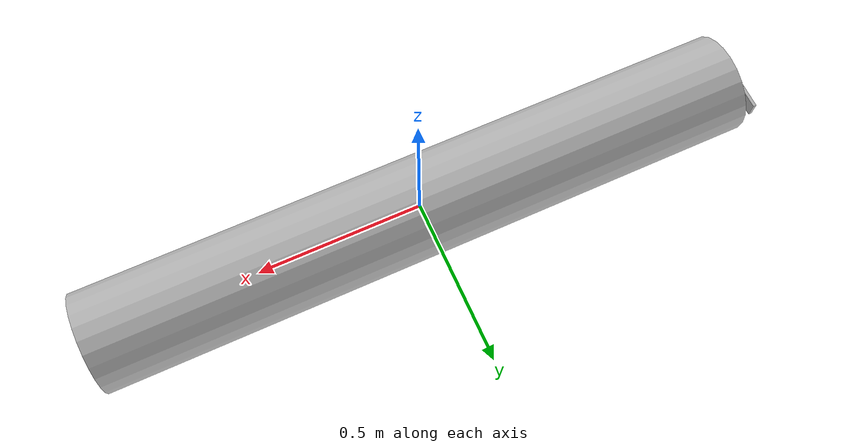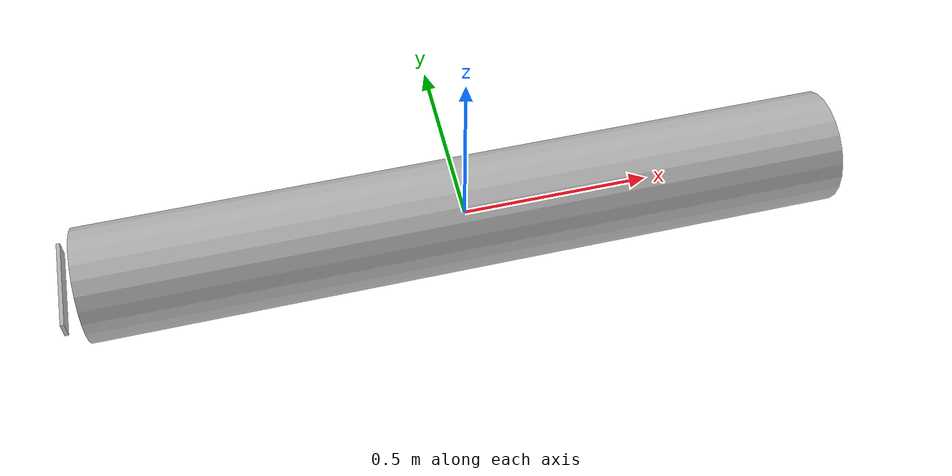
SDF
<?xml version="1.0" ?>
<sdf version="1.6">
  <world name="battery_thruster_consumer">
    <plugin
      filename="gz-sim-apply-link-wrench-system"
      name="gz::sim::systems::ApplyLinkWrench">
    </plugin>

    <physics name="fast" type="none">
      <!-- Zero to run as fast as possible -->
      <real_time_factor>0</real_time_factor>
    </physics>

    <!-- prevent sinking -->
    <gravity>0 0 0</gravity>

    <plugin
      filename="gz-sim-physics-system"
      name="gz::sim::systems::Physics">
    </plugin>
    <plugin
      filename="gz-sim-scene-broadcaster-system"
      name="gz::sim::systems::SceneBroadcaster">
    </plugin>

    <light type="directional" name="sun">
      <cast_shadows>true</cast_shadows>
      <pose>0 0 10 0 0 0</pose>
      <diffuse>1 1 1 1</diffuse>
      <specular>0.5 0.5 0.5 1</specular>
      <attenuation>
        <range>1000</range>
        <constant>0.9</constant>
        <linear>0.01</linear>
        <quadratic>0.001</quadratic>
      </attenuation>
      <direction>-0.5 0.1 -0.9</direction>
    </light>

    <model name="model1">

      <link name="body">
        <pose>0 0 0   0 1.57 0</pose>
        <inertial>
          <mass>100</mass>
          <inertia>
            <ixx>33.89</ixx>
            <ixy>0</ixy>
            <ixz>0</ixz>
            <iyy>33.89</iyy>
            <iyz>0</iyz>
            <izz>1.125</izz>
          </inertia>
        </inertial>
        <visual name="visual">
          <geometry>
            <cylinder>
              <length>2</length>
              <radius>0.15</radius>
            </cylinder>
          </geometry>
        </visual>
      </link>

      <link name="propeller">
        <pose>-1.05 0 0 0 0 0</pose>
        <inertial>
          <mass>0.1</mass>
          <inertia>
            <ixx>0.000354167</ixx>
            <ixy>0</ixy>
            <ixz>0</ixz>
            <iyy>0.000021667</iyy>
            <iyz>0</iyz>
            <izz>0.000334167</izz>
          </inertia>
        </inertial>
        <visual name="visual">
          <geometry>
            <box>
              <size>0.01 0.25 0.05</size>
            </box>
          </geometry>
        </visual>
      </link>

      <joint name="propeller_joint" type="revolute">
        <parent>body</parent>
        <child>propeller</child>
        <axis>
          <xyz>1 0 0</xyz>
          <limit>
            <lower>-1e+12</lower>
            <upper>1e+12</upper>
            <effort>1e6</effort>
            <velocity>1e6</velocity>
          </limit>
        </axis>
      </joint>

      <plugin
        filename="gz-sim-thruster-system"
        name="gz::sim::systems::Thruster">
        <namespace>lowbattery</namespace>
        <joint_name>propeller_joint</joint_name>
        <thrust_coefficient>0.005</thrust_coefficient>
        <fluid_density>950</fluid_density>
        <propeller_diameter>0.25</propeller_diameter>
        <velocity_control>true</velocity_control>
        <max_thrust_cmd>300</max_thrust_cmd>
        <min_thrust_cmd>0</min_thrust_cmd>
        <topic>thrust</topic>
      </plugin>

      <plugin filename="gz-sim-linearbatteryplugin-system"
        name="gz::sim::systems::LinearBatteryPlugin">
        <battery_name>linear_battery</battery_name>
        <voltage>12.592</voltage>
        <open_circuit_voltage_constant_coef>12.694</open_circuit_voltage_constant_coef>
        <open_circuit_voltage_linear_coef>-3.1424</open_circuit_voltage_linear_coef>
        <initial_charge>1.2009</initial_charge>
        <capacity>1.2009</capacity>
        <resistance>0.061523</resistance>
        <smooth_current_tau>1.9499</smooth_current_tau>
        <!-- Consumer-specific -->
        <power_load>500</power_load>  <!-- high load to quickly drain battery -->
        <start_draining>true</start_draining>
      </plugin>
    </model>

    <model name="model2">

      <link name="body">
        <pose>0 0 0   0 1.57 0</pose>
        <inertial>
          <mass>100</mass>
          <inertia>
            <ixx>33.89</ixx>
            <ixy>0</ixy>
            <ixz>0</ixz>
            <iyy>33.89</iyy>
            <iyz>0</iyz>
            <izz>1.125</izz>
          </inertia>
        </inertial>
        <visual name="visual">
          <geometry>
            <cylinder>
              <length>2</length>
              <radius>0.15</radius>
            </cylinder>
          </geometry>
        </visual>
      </link>

      <link name="propeller">
        <pose>-1.05 0 0 0 0 0</pose>
        <inertial>
          <mass>0.1</mass>
          <inertia>
            <ixx>0.000354167</ixx>
            <ixy>0</ixy>
            <ixz>0</ixz>
            <iyy>0.000021667</iyy>
            <iyz>0</iyz>
            <izz>0.000334167</izz>
          </inertia>
        </inertial>
        <visual name="visual">
          <geometry>
            <box>
              <size>0.01 0.25 0.05</size>
            </box>
          </geometry>
        </visual>
      </link>

      <joint name="propeller_joint" type="revolute">
        <parent>body</parent>
        <child>propeller</child>
        <axis>
          <xyz>1 0 0</xyz>
          <limit>
            <lower>-1e+12</lower>
            <upper>1e+12</upper>
            <effort>1e6</effort>
            <velocity>1e6</velocity>
          </limit>
        </axis>
      </joint>

      <plugin
        filename="gz-sim-thruster-system"
        name="gz::sim::systems::Thruster">
        <namespace>lowbattery</namespace>
        <joint_name>propeller_joint</joint_name>
        <thrust_coefficient>0.005</thrust_coefficient>
        <fluid_density>950</fluid_density>
        <propeller_diameter>0.25</propeller_diameter>
        <velocity_control>true</velocity_control>
        <max_thrust_cmd>300</max_thrust_cmd>
        <min_thrust_cmd>0</min_thrust_cmd>
        <topic>thrust</topic>
        <power_load>500</power_load>
        <battery_name>linear_battery2</battery_name>
      </plugin>

      <plugin filename="gz-sim-linearbatteryplugin-system"
        name="gz::sim::systems::LinearBatteryPlugin">
        <battery_name>linear_battery2</battery_name>
        <voltage>12.592</voltage>
        <open_circuit_voltage_constant_coef>12.694</open_circuit_voltage_constant_coef>
        <open_circuit_voltage_linear_coef>-3.1424</open_circuit_voltage_linear_coef>
        <initial_charge>1.2009</initial_charge>
        <capacity>1.2009</capacity>
        <resistance>0.061523</resistance>
        <smooth_current_tau>1.9499</smooth_current_tau>
        <!-- Consumer-specific -->
        <power_load>500</power_load>  <!-- high load to quickly drain battery -->
        <start_draining>true</start_draining>
      </plugin>
    </model>
  </world>
</sdf>
